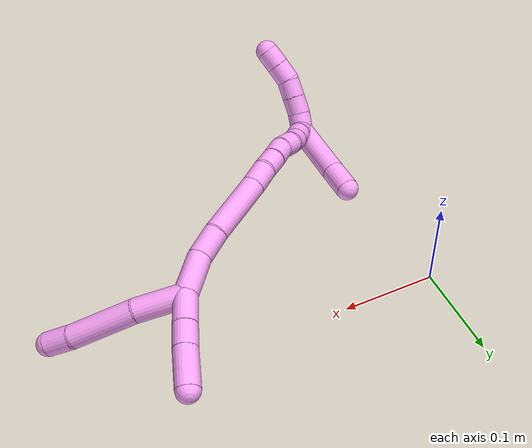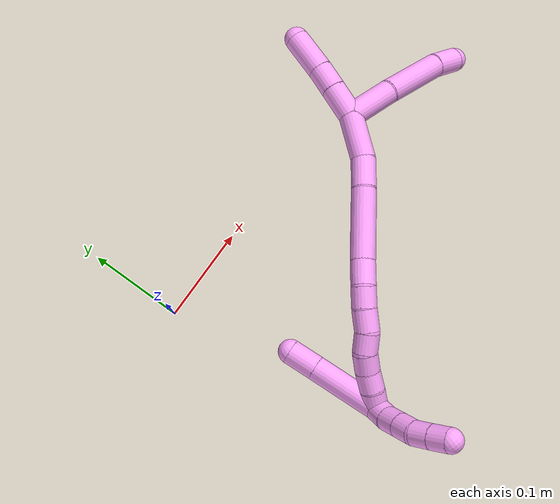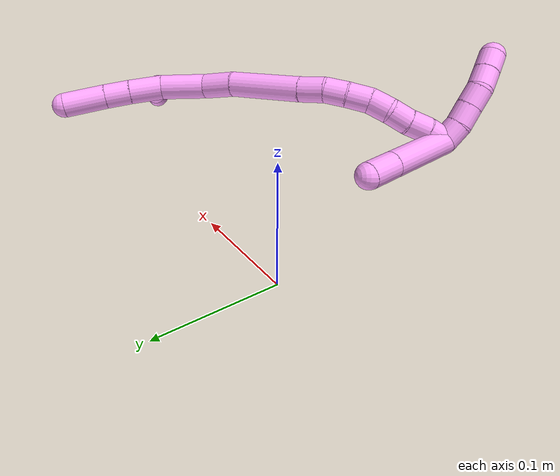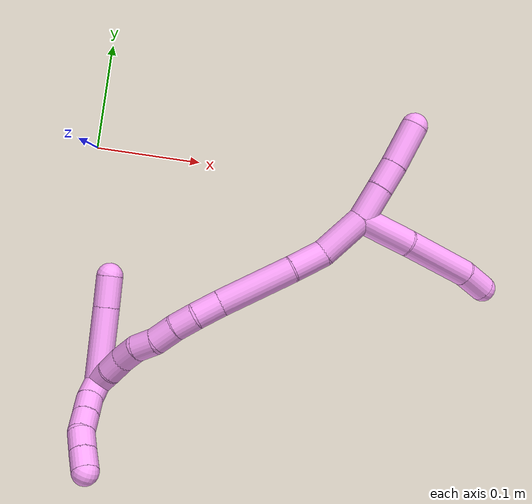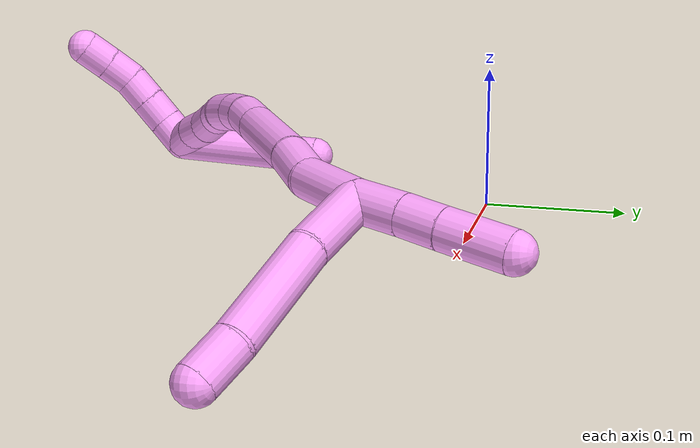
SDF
<sdf version="1.7">
 <world name="default">
  <model name="4">
   <static>0</static>
   <link name="4">
    <collision name="collision-cylinder-e_1_2_8">
     <pose>0.024394 0.007771 -0.00159 -1.7726 1.2564 -1.45455</pose>
     <geometry><cylinder><radius>0.0125</radius><length>0.051302</length></cylinder></geometry>
     <surface>
      <friction><ode><mu>1.16</mu><mu2>1.16</mu2><slip1>0</slip1><slip2>0</slip2></ode></friction>
      <contact><ode><kp>1e+06</kp><kd>1</kd><max_vel>0</max_vel><min_depth>0.001</min_depth></ode></contact>
     </surface>
    </collision>
    <visual name="visual-cylinder-e_1_2_8">
     <pose>0.024394 0.007771 -0.00159 -1.7726 1.2564 -1.45455</pose>
     <geometry><cylinder><radius>0.0125</radius><length>0.051302</length></cylinder></geometry>
     <material><ambient>1 0.65098 0.996078 1</ambient></material>
    </visual>
    <collision name="collision-cylinder-e_2_8_9">
     <pose>0.08029 0.030787 -0.006246 -1.76928 1.11228 -1.29855</pose>
     <geometry><cylinder><radius>0.0125</radius><length>0.070263</length></cylinder></geometry>
     <surface>
      <friction><ode><mu>1.16</mu><mu2>1.16</mu2><slip1>0</slip1><slip2>0</slip2></ode></friction>
      <contact><ode><kp>1e+06</kp><kd>1</kd><max_vel>0</max_vel><min_depth>0.001</min_depth></ode></contact>
     </surface>
    </collision>
    <visual name="visual-cylinder-e_2_8_9">
     <pose>0.08029 0.030787 -0.006246 -1.76928 1.11228 -1.29855</pose>
     <geometry><cylinder><radius>0.0125</radius><length>0.070263</length></cylinder></geometry>
     <material><ambient>1 0.65098 0.996078 1</ambient></material>
    </visual>
    <collision name="collision-cylinder-e_3_9_6">
     <pose>0.123909 0.052584 -0.012834 -2.06391 1.02019 -1.50451</pose>
     <geometry><cylinder><radius>0.0125</radius><length>0.028435</length></cylinder></geometry>
     <surface>
      <friction><ode><mu>1.16</mu><mu2>1.16</mu2><slip1>0</slip1><slip2>0</slip2></ode></friction>
      <contact><ode><kp>1e+06</kp><kd>1</kd><max_vel>0</max_vel><min_depth>0.001</min_depth></ode></contact>
     </surface>
    </collision>
    <visual name="visual-cylinder-e_3_9_6">
     <pose>0.123909 0.052584 -0.012834 -2.06391 1.02019 -1.50451</pose>
     <geometry><cylinder><radius>0.0125</radius><length>0.028435</length></cylinder></geometry>
     <material><ambient>1 0.65098 0.996078 1</ambient></material>
    </visual>
    <collision name="collision-cylinder-e_1_2_10">
     <pose>0.00198 0.003338 0.016075 -0.204748 0.120036 -0.012346</pose>
     <geometry><cylinder><radius>0.0125</radius><length>0.033074</length></cylinder></geometry>
     <surface>
      <friction><ode><mu>1.16</mu><mu2>1.16</mu2><slip1>0</slip1><slip2>0</slip2></ode></friction>
      <contact><ode><kp>1e+06</kp><kd>1</kd><max_vel>0</max_vel><min_depth>0.001</min_depth></ode></contact>
     </surface>
    </collision>
    <visual name="visual-cylinder-e_1_2_10">
     <pose>0.00198 0.003338 0.016075 -0.204748 0.120036 -0.012346</pose>
     <geometry><cylinder><radius>0.0125</radius><length>0.033074</length></cylinder></geometry>
     <material><ambient>1 0.65098 0.996078 1</ambient></material>
    </visual>
    <collision name="collision-cylinder-e_2_10_11">
     <pose>0.005423 0.009645 0.044313 -0.239371 0.116302 -0.014002</pose>
     <geometry><cylinder><radius>0.0125</radius><length>0.025209</length></cylinder></geometry>
     <surface>
      <friction><ode><mu>1.16</mu><mu2>1.16</mu2><slip1>0</slip1><slip2>0</slip2></ode></friction>
      <contact><ode><kp>1e+06</kp><kd>1</kd><max_vel>0</max_vel><min_depth>0.001</min_depth></ode></contact>
     </surface>
    </collision>
    <visual name="visual-cylinder-e_2_10_11">
     <pose>0.005423 0.009645 0.044313 -0.239371 0.116302 -0.014002</pose>
     <geometry><cylinder><radius>0.0125</radius><length>0.025209</length></cylinder></geometry>
     <material><ambient>1 0.65098 0.996078 1</ambient></material>
    </visual>
    <collision name="collision-cylinder-e_3_11_5">
     <pose>0.008218 0.017771 0.076642 -0.250402 0.063888 -0.008044</pose>
     <geometry><cylinder><radius>0.0125</radius><length>0.041717</length></cylinder></geometry>
     <surface>
      <friction><ode><mu>1.16</mu><mu2>1.16</mu2><slip1>0</slip1><slip2>0</slip2></ode></friction>
      <contact><ode><kp>1e+06</kp><kd>1</kd><max_vel>0</max_vel><min_depth>0.001</min_depth></ode></contact>
     </surface>
    </collision>
    <visual name="visual-cylinder-e_3_11_5">
     <pose>0.008218 0.017771 0.076642 -0.250402 0.063888 -0.008044</pose>
     <geometry><cylinder><radius>0.0125</radius><length>0.041717</length></cylinder></geometry>
     <material><ambient>1 0.65098 0.996078 1</ambient></material>
    </visual>
    <collision name="collision-cylinder-e_1_2_12">
     <pose>-0.00943 -0.003854 -0.02092 2.95942 -0.417252 -2.32695</pose>
     <geometry><cylinder><radius>0.0125</radius><length>0.046537</length></cylinder></geometry>
     <surface>
      <friction><ode><mu>1.16</mu><mu2>1.16</mu2><slip1>0</slip1><slip2>0</slip2></ode></friction>
      <contact><ode><kp>1e+06</kp><kd>1</kd><max_vel>0</max_vel><min_depth>0.001</min_depth></ode></contact>
     </surface>
    </collision>
    <visual name="visual-cylinder-e_1_2_12">
     <pose>-0.00943 -0.003854 -0.02092 2.95942 -0.417252 -2.32695</pose>
     <geometry><cylinder><radius>0.0125</radius><length>0.046537</length></cylinder></geometry>
     <material><ambient>1 0.65098 0.996078 1</ambient></material>
    </visual>
    <collision name="collision-cylinder-e_2_12_13">
     <pose>-0.028654 -0.012206 -0.053637 2.77733 -0.659825 -2.15466</pose>
     <geometry><cylinder><radius>0.0125</radius><length>0.031957</length></cylinder></geometry>
     <surface>
      <friction><ode><mu>1.16</mu><mu2>1.16</mu2><slip1>0</slip1><slip2>0</slip2></ode></friction>
      <contact><ode><kp>1e+06</kp><kd>1</kd><max_vel>0</max_vel><min_depth>0.001</min_depth></ode></contact>
     </surface>
    </collision>
    <visual name="visual-cylinder-e_2_12_13">
     <pose>-0.028654 -0.012206 -0.053637 2.77733 -0.659825 -2.15466</pose>
     <geometry><cylinder><radius>0.0125</radius><length>0.031957</length></cylinder></geometry>
     <material><ambient>1 0.65098 0.996078 1</ambient></material>
    </visual>
    <collision name="collision-cylinder-e_3_13_14">
     <pose>-0.061423 -0.021897 -0.09237 2.95111 -0.69719 -2.62752</pose>
     <geometry><cylinder><radius>0.0125</radius><length>0.071564</length></cylinder></geometry>
     <surface>
      <friction><ode><mu>1.16</mu><mu2>1.16</mu2><slip1>0</slip1><slip2>0</slip2></ode></friction>
      <contact><ode><kp>1e+06</kp><kd>1</kd><max_vel>0</max_vel><min_depth>0.001</min_depth></ode></contact>
     </surface>
    </collision>
    <visual name="visual-cylinder-e_3_13_14">
     <pose>-0.061423 -0.021897 -0.09237 2.95111 -0.69719 -2.62752</pose>
     <geometry><cylinder><radius>0.0125</radius><length>0.071564</length></cylinder></geometry>
     <material><ambient>1 0.65098 0.996078 1</ambient></material>
    </visual>
    <collision name="collision-cylinder-e_4_14_15">
     <pose>-0.092085 -0.029452 -0.128927 2.90093 -0.65993 -2.4628</pose>
     <geometry><cylinder><radius>0.0125</radius><length>0.025078</length></cylinder></geometry>
     <surface>
      <friction><ode><mu>1.16</mu><mu2>1.16</mu2><slip1>0</slip1><slip2>0</slip2></ode></friction>
      <contact><ode><kp>1e+06</kp><kd>1</kd><max_vel>0</max_vel><min_depth>0.001</min_depth></ode></contact>
     </surface>
    </collision>
    <visual name="visual-cylinder-e_4_14_15">
     <pose>-0.092085 -0.029452 -0.128927 2.90093 -0.65993 -2.4628</pose>
     <geometry><cylinder><radius>0.0125</radius><length>0.025078</length></cylinder></geometry>
     <material><ambient>1 0.65098 0.996078 1</ambient></material>
    </visual>
    <collision name="collision-cylinder-e_5_15_16">
     <pose>-0.106086 -0.031707 -0.14719 -3.12932 -0.630951 3.10398</pose>
     <geometry><cylinder><radius>0.0125</radius><length>0.021408</length></cylinder></geometry>
     <surface>
      <friction><ode><mu>1.16</mu><mu2>1.16</mu2><slip1>0</slip1><slip2>0</slip2></ode></friction>
      <contact><ode><kp>1e+06</kp><kd>1</kd><max_vel>0</max_vel><min_depth>0.001</min_depth></ode></contact>
     </surface>
    </collision>
    <visual name="visual-cylinder-e_5_15_16">
     <pose>-0.106086 -0.031707 -0.14719 -3.12932 -0.630951 3.10398</pose>
     <geometry><cylinder><radius>0.0125</radius><length>0.021408</length></cylinder></geometry>
     <material><ambient>1 0.65098 0.996078 1</ambient></material>
    </visual>
    <collision name="collision-cylinder-e_6_16_17">
     <pose>-0.118112 -0.030594 -0.165545 -3.03824 -0.52923 2.76439</pose>
     <geometry><cylinder><radius>0.0125</radius><length>0.022626</length></cylinder></geometry>
     <surface>
      <friction><ode><mu>1.16</mu><mu2>1.16</mu2><slip1>0</slip1><slip2>0</slip2></ode></friction>
      <contact><ode><kp>1e+06</kp><kd>1</kd><max_vel>0</max_vel><min_depth>0.001</min_depth></ode></contact>
     </surface>
    </collision>
    <visual name="visual-cylinder-e_6_16_17">
     <pose>-0.118112 -0.030594 -0.165545 -3.03824 -0.52923 2.76439</pose>
     <geometry><cylinder><radius>0.0125</radius><length>0.022626</length></cylinder></geometry>
     <material><ambient>1 0.65098 0.996078 1</ambient></material>
    </visual>
    <collision name="collision-cylinder-e_7_17_18">
     <pose>-0.13059 -0.027001 -0.18253 -2.80005 -0.719876 2.28221</pose>
     <geometry><cylinder><radius>0.0125</radius><length>0.020527</length></cylinder></geometry>
     <surface>
      <friction><ode><mu>1.16</mu><mu2>1.16</mu2><slip1>0</slip1><slip2>0</slip2></ode></friction>
      <contact><ode><kp>1e+06</kp><kd>1</kd><max_vel>0</max_vel><min_depth>0.001</min_depth></ode></contact>
     </surface>
    </collision>
    <visual name="visual-cylinder-e_7_17_18">
     <pose>-0.13059 -0.027001 -0.18253 -2.80005 -0.719876 2.28221</pose>
     <geometry><cylinder><radius>0.0125</radius><length>0.020527</length></cylinder></geometry>
     <material><ambient>1 0.65098 0.996078 1</ambient></material>
    </visual>
    <collision name="collision-cylinder-e_8_18_19">
     <pose>-0.141573 -0.020439 -0.198054 -2.6925 -0.431266 1.52896</pose>
     <geometry><cylinder><radius>0.0125</radius><length>0.020171</length></cylinder></geometry>
     <surface>
      <friction><ode><mu>1.16</mu><mu2>1.16</mu2><slip1>0</slip1><slip2>0</slip2></ode></friction>
      <contact><ode><kp>1e+06</kp><kd>1</kd><max_vel>0</max_vel><min_depth>0.001</min_depth></ode></contact>
     </surface>
    </collision>
    <visual name="visual-cylinder-e_8_18_19">
     <pose>-0.141573 -0.020439 -0.198054 -2.6925 -0.431266 1.52896</pose>
     <geometry><cylinder><radius>0.0125</radius><length>0.020171</length></cylinder></geometry>
     <material><ambient>1 0.65098 0.996078 1</ambient></material>
    </visual>
    <collision name="collision-cylinder-e_9_19_20">
     <pose>-0.149359 -0.013579 -0.215231 -2.82912 -0.363804 1.72521</pose>
     <geometry><cylinder><radius>0.0125</radius><length>0.020067</length></cylinder></geometry>
     <surface>
      <friction><ode><mu>1.16</mu><mu2>1.16</mu2><slip1>0</slip1><slip2>0</slip2></ode></friction>
      <contact><ode><kp>1e+06</kp><kd>1</kd><max_vel>0</max_vel><min_depth>0.001</min_depth></ode></contact>
     </surface>
    </collision>
    <visual name="visual-cylinder-e_9_19_20">
     <pose>-0.149359 -0.013579 -0.215231 -2.82912 -0.363804 1.72521</pose>
     <geometry><cylinder><radius>0.0125</radius><length>0.020067</length></cylinder></geometry>
     <material><ambient>1 0.65098 0.996078 1</ambient></material>
    </visual>
    <collision name="collision-cylinder-e_10_20_1">
     <pose>-0.156543 -0.006427 -0.232482 -2.66794 -0.368468 1.31497</pose>
     <geometry><cylinder><radius>0.0125</radius><length>0.020064</length></cylinder></geometry>
     <surface>
      <friction><ode><mu>1.16</mu><mu2>1.16</mu2><slip1>0</slip1><slip2>0</slip2></ode></friction>
      <contact><ode><kp>1e+06</kp><kd>1</kd><max_vel>0</max_vel><min_depth>0.001</min_depth></ode></contact>
     </surface>
    </collision>
    <visual name="visual-cylinder-e_10_20_1">
     <pose>-0.156543 -0.006427 -0.232482 -2.66794 -0.368468 1.31497</pose>
     <geometry><cylinder><radius>0.0125</radius><length>0.020064</length></cylinder></geometry>
     <material><ambient>1 0.65098 0.996078 1</ambient></material>
    </visual>
    <collision name="collision-cylinder-e_1_1_21">
     <pose>-0.171209 0.003446 -0.207861 -0.16846 -0.319384 0.027195</pose>
     <geometry><cylinder><radius>0.0125</radius><length>0.070405</length></cylinder></geometry>
     <surface>
      <friction><ode><mu>1.16</mu><mu2>1.16</mu2><slip1>0</slip1><slip2>0</slip2></ode></friction>
      <contact><ode><kp>1e+06</kp><kd>1</kd><max_vel>0</max_vel><min_depth>0.001</min_depth></ode></contact>
     </surface>
    </collision>
    <visual name="visual-cylinder-e_1_1_21">
     <pose>-0.171209 0.003446 -0.207861 -0.16846 -0.319384 0.027195</pose>
     <geometry><cylinder><radius>0.0125</radius><length>0.070405</length></cylinder></geometry>
     <material><ambient>1 0.65098 0.996078 1</ambient></material>
    </visual>
    <collision name="collision-cylinder-e_2_21_4">
     <pose>-0.187011 0.011316 -0.161082 -0.16242 -0.326737 0.02683</pose>
     <geometry><cylinder><radius>0.0125</radius><length>0.029595</length></cylinder></geometry>
     <surface>
      <friction><ode><mu>1.16</mu><mu2>1.16</mu2><slip1>0</slip1><slip2>0</slip2></ode></friction>
      <contact><ode><kp>1e+06</kp><kd>1</kd><max_vel>0</max_vel><min_depth>0.001</min_depth></ode></contact>
     </surface>
    </collision>
    <visual name="visual-cylinder-e_2_21_4">
     <pose>-0.187011 0.011316 -0.161082 -0.16242 -0.326737 0.02683</pose>
     <geometry><cylinder><radius>0.0125</radius><length>0.029595</length></cylinder></geometry>
     <material><ambient>1 0.65098 0.996078 1</ambient></material>
    </visual>
    <collision name="collision-cylinder-e_1_1_22">
     <pose>-0.159563 -0.009929 -0.247077 2.24943 0.059349 0.123979</pose>
     <geometry><cylinder><radius>0.0125</radius><length>0.02</length></cylinder></geometry>
     <surface>
      <friction><ode><mu>1.16</mu><mu2>1.16</mu2><slip1>0</slip1><slip2>0</slip2></ode></friction>
      <contact><ode><kp>1e+06</kp><kd>1</kd><max_vel>0</max_vel><min_depth>0.001</min_depth></ode></contact>
     </surface>
    </collision>
    <visual name="visual-cylinder-e_1_1_22">
     <pose>-0.159563 -0.009929 -0.247077 2.24943 0.059349 0.123979</pose>
     <geometry><cylinder><radius>0.0125</radius><length>0.02</length></cylinder></geometry>
     <material><ambient>1 0.65098 0.996078 1</ambient></material>
    </visual>
    <collision name="collision-cylinder-e_2_22_23">
     <pose>-0.15668 -0.025963 -0.258488 2.12769 0.231069 0.412</pose>
     <geometry><cylinder><radius>0.0125</radius><length>0.02</length></cylinder></geometry>
     <surface>
      <friction><ode><mu>1.16</mu><mu2>1.16</mu2><slip1>0</slip1><slip2>0</slip2></ode></friction>
      <contact><ode><kp>1e+06</kp><kd>1</kd><max_vel>0</max_vel><min_depth>0.001</min_depth></ode></contact>
     </surface>
    </collision>
    <visual name="visual-cylinder-e_2_22_23">
     <pose>-0.15668 -0.025963 -0.258488 2.12769 0.231069 0.412</pose>
     <geometry><cylinder><radius>0.0125</radius><length>0.02</length></cylinder></geometry>
     <material><ambient>1 0.65098 0.996078 1</ambient></material>
    </visual>
    <collision name="collision-cylinder-e_3_23_24">
     <pose>-0.152139 -0.04241 -0.268921 2.14444 0.226951 0.41268</pose>
     <geometry><cylinder><radius>0.0125</radius><length>0.02</length></cylinder></geometry>
     <surface>
      <friction><ode><mu>1.16</mu><mu2>1.16</mu2><slip1>0</slip1><slip2>0</slip2></ode></friction>
      <contact><ode><kp>1e+06</kp><kd>1</kd><max_vel>0</max_vel><min_depth>0.001</min_depth></ode></contact>
     </surface>
    </collision>
    <visual name="visual-cylinder-e_3_23_24">
     <pose>-0.152139 -0.04241 -0.268921 2.14444 0.226951 0.41268</pose>
     <geometry><cylinder><radius>0.0125</radius><length>0.02</length></cylinder></geometry>
     <material><ambient>1 0.65098 0.996078 1</ambient></material>
    </visual>
    <collision name="collision-cylinder-e_4_24_25">
     <pose>-0.144952 -0.057445 -0.279564 2.23425 0.516413 0.992812</pose>
     <geometry><cylinder><radius>0.0125</radius><length>0.02</length></cylinder></geometry>
     <surface>
      <friction><ode><mu>1.16</mu><mu2>1.16</mu2><slip1>0</slip1><slip2>0</slip2></ode></friction>
      <contact><ode><kp>1e+06</kp><kd>1</kd><max_vel>0</max_vel><min_depth>0.001</min_depth></ode></contact>
     </surface>
    </collision>
    <visual name="visual-cylinder-e_4_24_25">
     <pose>-0.144952 -0.057445 -0.279564 2.23425 0.516413 0.992812</pose>
     <geometry><cylinder><radius>0.0125</radius><length>0.02</length></cylinder></geometry>
     <material><ambient>1 0.65098 0.996078 1</ambient></material>
    </visual>
    <collision name="collision-cylinder-e_5_25_3">
     <pose>-0.13486 -0.071002 -0.290255 2.24299 0.54148 1.04458</pose>
     <geometry><cylinder><radius>0.0125</radius><length>0.02</length></cylinder></geometry>
     <surface>
      <friction><ode><mu>1.16</mu><mu2>1.16</mu2><slip1>0</slip1><slip2>0</slip2></ode></friction>
      <contact><ode><kp>1e+06</kp><kd>1</kd><max_vel>0</max_vel><min_depth>0.001</min_depth></ode></contact>
     </surface>
    </collision>
    <visual name="visual-cylinder-e_5_25_3">
     <pose>-0.13486 -0.071002 -0.290255 2.24299 0.54148 1.04458</pose>
     <geometry><cylinder><radius>0.0125</radius><length>0.02</length></cylinder></geometry>
     <material><ambient>1 0.65098 0.996078 1</ambient></material>
    </visual>
    <collision name="collision-sphere-3">
     <pose>-0.129706 -0.077707 -0.295592 0 -0 0</pose>
     <geometry><sphere><radius>0.0125</radius></sphere></geometry>
     <surface>
      <friction><ode><mu>1.16</mu><mu2>1.16</mu2><slip1>0</slip1><slip2>0</slip2></ode></friction>
      <contact><ode><kp>1e+06</kp><kd>1</kd><max_vel>0</max_vel><min_depth>0.001</min_depth></ode></contact>
     </surface>
    </collision>
    <visual name="visual-sphere-3">
     <pose>-0.129706 -0.077707 -0.295592 0 -0 0</pose>
     <geometry><sphere><radius>0.0125</radius></sphere></geometry>
     <material><ambient>1 0.65098 0.996078 1</ambient></material>
    </visual>
    <collision name="collision-sphere-25">
     <pose>-0.140014 -0.064297 -0.284919 0 -0 0</pose>
     <geometry><sphere><radius>0.0125</radius></sphere></geometry>
     <surface>
      <friction><ode><mu>1.16</mu><mu2>1.16</mu2><slip1>0</slip1><slip2>0</slip2></ode></friction>
      <contact><ode><kp>1e+06</kp><kd>1</kd><max_vel>0</max_vel><min_depth>0.001</min_depth></ode></contact>
     </surface>
    </collision>
    <visual name="visual-sphere-25">
     <pose>-0.140014 -0.064297 -0.284919 0 -0 0</pose>
     <geometry><sphere><radius>0.0125</radius></sphere></geometry>
     <material><ambient>1 0.65098 0.996078 1</ambient></material>
    </visual>
    <collision name="collision-sphere-24">
     <pose>-0.149889 -0.050594 -0.274209 0 -0 0</pose>
     <geometry><sphere><radius>0.0125</radius></sphere></geometry>
     <surface>
      <friction><ode><mu>1.16</mu><mu2>1.16</mu2><slip1>0</slip1><slip2>0</slip2></ode></friction>
      <contact><ode><kp>1e+06</kp><kd>1</kd><max_vel>0</max_vel><min_depth>0.001</min_depth></ode></contact>
     </surface>
    </collision>
    <visual name="visual-sphere-24">
     <pose>-0.149889 -0.050594 -0.274209 0 -0 0</pose>
     <geometry><sphere><radius>0.0125</radius></sphere></geometry>
     <material><ambient>1 0.65098 0.996078 1</ambient></material>
    </visual>
    <collision name="collision-sphere-23">
     <pose>-0.154389 -0.034226 -0.263633 0 -0 0</pose>
     <geometry><sphere><radius>0.0125</radius></sphere></geometry>
     <surface>
      <friction><ode><mu>1.16</mu><mu2>1.16</mu2><slip1>0</slip1><slip2>0</slip2></ode></friction>
      <contact><ode><kp>1e+06</kp><kd>1</kd><max_vel>0</max_vel><min_depth>0.001</min_depth></ode></contact>
     </surface>
    </collision>
    <visual name="visual-sphere-23">
     <pose>-0.154389 -0.034226 -0.263633 0 -0 0</pose>
     <geometry><sphere><radius>0.0125</radius></sphere></geometry>
     <material><ambient>1 0.65098 0.996078 1</ambient></material>
    </visual>
    <collision name="collision-sphere-22">
     <pose>-0.15897 -0.017699 -0.253343 0 -0 0</pose>
     <geometry><sphere><radius>0.0125</radius></sphere></geometry>
     <surface>
      <friction><ode><mu>1.16</mu><mu2>1.16</mu2><slip1>0</slip1><slip2>0</slip2></ode></friction>
      <contact><ode><kp>1e+06</kp><kd>1</kd><max_vel>0</max_vel><min_depth>0.001</min_depth></ode></contact>
     </surface>
    </collision>
    <visual name="visual-sphere-22">
     <pose>-0.15897 -0.017699 -0.253343 0 -0 0</pose>
     <geometry><sphere><radius>0.0125</radius></sphere></geometry>
     <material><ambient>1 0.65098 0.996078 1</ambient></material>
    </visual>
    <collision name="collision-sphere-4">
     <pose>-0.191761 0.013582 -0.147252 0 -0 0</pose>
     <geometry><sphere><radius>0.0125</radius></sphere></geometry>
     <surface>
      <friction><ode><mu>1.16</mu><mu2>1.16</mu2><slip1>0</slip1><slip2>0</slip2></ode></friction>
      <contact><ode><kp>1e+06</kp><kd>1</kd><max_vel>0</max_vel><min_depth>0.001</min_depth></ode></contact>
     </surface>
    </collision>
    <visual name="visual-sphere-4">
     <pose>-0.191761 0.013582 -0.147252 0 -0 0</pose>
     <geometry><sphere><radius>0.0125</radius></sphere></geometry>
     <material><ambient>1 0.65098 0.996078 1</ambient></material>
    </visual>
    <collision name="collision-sphere-21">
     <pose>-0.182262 0.009049 -0.174912 0 -0 0</pose>
     <geometry><sphere><radius>0.0125</radius></sphere></geometry>
     <surface>
      <friction><ode><mu>1.16</mu><mu2>1.16</mu2><slip1>0</slip1><slip2>0</slip2></ode></friction>
      <contact><ode><kp>1e+06</kp><kd>1</kd><max_vel>0</max_vel><min_depth>0.001</min_depth></ode></contact>
     </surface>
    </collision>
    <visual name="visual-sphere-21">
     <pose>-0.182262 0.009049 -0.174912 0 -0 0</pose>
     <geometry><sphere><radius>0.0125</radius></sphere></geometry>
     <material><ambient>1 0.65098 0.996078 1</ambient></material>
    </visual>
    <collision name="collision-sphere-1">
     <pose>-0.160156 -0.002158 -0.240811 0 -0 0</pose>
     <geometry><sphere><radius>0.0125</radius></sphere></geometry>
     <surface>
      <friction><ode><mu>1.16</mu><mu2>1.16</mu2><slip1>0</slip1><slip2>0</slip2></ode></friction>
      <contact><ode><kp>1e+06</kp><kd>1</kd><max_vel>0</max_vel><min_depth>0.001</min_depth></ode></contact>
     </surface>
    </collision>
    <visual name="visual-sphere-1">
     <pose>-0.160156 -0.002158 -0.240811 0 -0 0</pose>
     <geometry><sphere><radius>0.0125</radius></sphere></geometry>
     <material><ambient>1 0.65098 0.996078 1</ambient></material>
    </visual>
    <collision name="collision-sphere-11">
     <pose>0.006886 0.012613 0.056475 0 -0 0</pose>
     <geometry><sphere><radius>0.0125</radius></sphere></geometry>
     <surface>
      <friction><ode><mu>1.16</mu><mu2>1.16</mu2><slip1>0</slip1><slip2>0</slip2></ode></friction>
      <contact><ode><kp>1e+06</kp><kd>1</kd><max_vel>0</max_vel><min_depth>0.001</min_depth></ode></contact>
     </surface>
    </collision>
    <visual name="visual-sphere-11">
     <pose>0.006886 0.012613 0.056475 0 -0 0</pose>
     <geometry><sphere><radius>0.0125</radius></sphere></geometry>
     <material><ambient>1 0.65098 0.996078 1</ambient></material>
    </visual>
    <collision name="collision-sphere-10">
     <pose>0.003961 0.006676 0.032151 0 -0 0</pose>
     <geometry><sphere><radius>0.0125</radius></sphere></geometry>
     <surface>
      <friction><ode><mu>1.16</mu><mu2>1.16</mu2><slip1>0</slip1><slip2>0</slip2></ode></friction>
      <contact><ode><kp>1e+06</kp><kd>1</kd><max_vel>0</max_vel><min_depth>0.001</min_depth></ode></contact>
     </surface>
    </collision>
    <visual name="visual-sphere-10">
     <pose>0.003961 0.006676 0.032151 0 -0 0</pose>
     <geometry><sphere><radius>0.0125</radius></sphere></geometry>
     <material><ambient>1 0.65098 0.996078 1</ambient></material>
    </visual>
    <collision name="collision-sphere-6">
     <pose>0.136026 0.059136 -0.016355 0 -0 0</pose>
     <geometry><sphere><radius>0.0125</radius></sphere></geometry>
     <surface>
      <friction><ode><mu>1.16</mu><mu2>1.16</mu2><slip1>0</slip1><slip2>0</slip2></ode></friction>
      <contact><ode><kp>1e+06</kp><kd>1</kd><max_vel>0</max_vel><min_depth>0.001</min_depth></ode></contact>
     </surface>
    </collision>
    <visual name="visual-sphere-6">
     <pose>0.136026 0.059136 -0.016355 0 -0 0</pose>
     <geometry><sphere><radius>0.0125</radius></sphere></geometry>
     <material><ambient>1 0.65098 0.996078 1</ambient></material>
    </visual>
    <collision name="collision-sphere-9">
     <pose>0.111793 0.046032 -0.009312 0 -0 0</pose>
     <geometry><sphere><radius>0.0125</radius></sphere></geometry>
     <surface>
      <friction><ode><mu>1.16</mu><mu2>1.16</mu2><slip1>0</slip1><slip2>0</slip2></ode></friction>
      <contact><ode><kp>1e+06</kp><kd>1</kd><max_vel>0</max_vel><min_depth>0.001</min_depth></ode></contact>
     </surface>
    </collision>
    <visual name="visual-sphere-9">
     <pose>0.111793 0.046032 -0.009312 0 -0 0</pose>
     <geometry><sphere><radius>0.0125</radius></sphere></geometry>
     <material><ambient>1 0.65098 0.996078 1</ambient></material>
    </visual>
    <collision name="collision-sphere-2">
     <geometry><sphere><radius>0.0125</radius></sphere></geometry>
     <surface>
      <friction><ode><mu>1.16</mu><mu2>1.16</mu2><slip1>0</slip1><slip2>0</slip2></ode></friction>
      <contact><ode><kp>1e+06</kp><kd>1</kd><max_vel>0</max_vel><min_depth>0.001</min_depth></ode></contact>
     </surface>
    </collision>
    <visual name="visual-sphere-2">
     <geometry><sphere><radius>0.0125</radius></sphere></geometry>
     <material><ambient>1 0.65098 0.996078 1</ambient></material>
    </visual>
    <collision name="collision-sphere-19">
     <pose>-0.145789 -0.016461 -0.206308 0 -0 0</pose>
     <geometry><sphere><radius>0.0125</radius></sphere></geometry>
     <surface>
      <friction><ode><mu>1.16</mu><mu2>1.16</mu2><slip1>0</slip1><slip2>0</slip2></ode></friction>
      <contact><ode><kp>1e+06</kp><kd>1</kd><max_vel>0</max_vel><min_depth>0.001</min_depth></ode></contact>
     </surface>
    </collision>
    <visual name="visual-sphere-19">
     <pose>-0.145789 -0.016461 -0.206308 0 -0 0</pose>
     <geometry><sphere><radius>0.0125</radius></sphere></geometry>
     <material><ambient>1 0.65098 0.996078 1</ambient></material>
    </visual>
    <collision name="collision-sphere-8">
     <pose>0.048787 0.015542 -0.00318 0 -0 0</pose>
     <geometry><sphere><radius>0.0125</radius></sphere></geometry>
     <surface>
      <friction><ode><mu>1.16</mu><mu2>1.16</mu2><slip1>0</slip1><slip2>0</slip2></ode></friction>
      <contact><ode><kp>1e+06</kp><kd>1</kd><max_vel>0</max_vel><min_depth>0.001</min_depth></ode></contact>
     </surface>
    </collision>
    <visual name="visual-sphere-8">
     <pose>0.048787 0.015542 -0.00318 0 -0 0</pose>
     <geometry><sphere><radius>0.0125</radius></sphere></geometry>
     <material><ambient>1 0.65098 0.996078 1</ambient></material>
    </visual>
    <collision name="collision-sphere-5">
     <pose>0.009549 0.022929 0.096808 0 -0 0</pose>
     <geometry><sphere><radius>0.0125</radius></sphere></geometry>
     <surface>
      <friction><ode><mu>1.16</mu><mu2>1.16</mu2><slip1>0</slip1><slip2>0</slip2></ode></friction>
      <contact><ode><kp>1e+06</kp><kd>1</kd><max_vel>0</max_vel><min_depth>0.001</min_depth></ode></contact>
     </surface>
    </collision>
    <visual name="visual-sphere-5">
     <pose>0.009549 0.022929 0.096808 0 -0 0</pose>
     <geometry><sphere><radius>0.0125</radius></sphere></geometry>
     <material><ambient>1 0.65098 0.996078 1</ambient></material>
    </visual>
    <collision name="collision-sphere-12">
     <pose>-0.018859 -0.007708 -0.041841 0 -0 0</pose>
     <geometry><sphere><radius>0.0125</radius></sphere></geometry>
     <surface>
      <friction><ode><mu>1.16</mu><mu2>1.16</mu2><slip1>0</slip1><slip2>0</slip2></ode></friction>
      <contact><ode><kp>1e+06</kp><kd>1</kd><max_vel>0</max_vel><min_depth>0.001</min_depth></ode></contact>
     </surface>
    </collision>
    <visual name="visual-sphere-12">
     <pose>-0.018859 -0.007708 -0.041841 0 -0 0</pose>
     <geometry><sphere><radius>0.0125</radius></sphere></geometry>
     <material><ambient>1 0.65098 0.996078 1</ambient></material>
    </visual>
    <collision name="collision-sphere-13">
     <pose>-0.038448 -0.016703 -0.065433 0 -0 0</pose>
     <geometry><sphere><radius>0.0125</radius></sphere></geometry>
     <surface>
      <friction><ode><mu>1.16</mu><mu2>1.16</mu2><slip1>0</slip1><slip2>0</slip2></ode></friction>
      <contact><ode><kp>1e+06</kp><kd>1</kd><max_vel>0</max_vel><min_depth>0.001</min_depth></ode></contact>
     </surface>
    </collision>
    <visual name="visual-sphere-13">
     <pose>-0.038448 -0.016703 -0.065433 0 -0 0</pose>
     <geometry><sphere><radius>0.0125</radius></sphere></geometry>
     <material><ambient>1 0.65098 0.996078 1</ambient></material>
    </visual>
    <collision name="collision-sphere-14">
     <pose>-0.084397 -0.027091 -0.119306 0 -0 0</pose>
     <geometry><sphere><radius>0.0125</radius></sphere></geometry>
     <surface>
      <friction><ode><mu>1.16</mu><mu2>1.16</mu2><slip1>0</slip1><slip2>0</slip2></ode></friction>
      <contact><ode><kp>1e+06</kp><kd>1</kd><max_vel>0</max_vel><min_depth>0.001</min_depth></ode></contact>
     </surface>
    </collision>
    <visual name="visual-sphere-14">
     <pose>-0.084397 -0.027091 -0.119306 0 -0 0</pose>
     <geometry><sphere><radius>0.0125</radius></sphere></geometry>
     <material><ambient>1 0.65098 0.996078 1</ambient></material>
    </visual>
    <collision name="collision-sphere-15">
     <pose>-0.099772 -0.031813 -0.138547 0 -0 0</pose>
     <geometry><sphere><radius>0.0125</radius></sphere></geometry>
     <surface>
      <friction><ode><mu>1.16</mu><mu2>1.16</mu2><slip1>0</slip1><slip2>0</slip2></ode></friction>
      <contact><ode><kp>1e+06</kp><kd>1</kd><max_vel>0</max_vel><min_depth>0.001</min_depth></ode></contact>
     </surface>
    </collision>
    <visual name="visual-sphere-15">
     <pose>-0.099772 -0.031813 -0.138547 0 -0 0</pose>
     <geometry><sphere><radius>0.0125</radius></sphere></geometry>
     <material><ambient>1 0.65098 0.996078 1</ambient></material>
    </visual>
    <collision name="collision-sphere-16">
     <pose>-0.1124 -0.031601 -0.155832 0 -0 0</pose>
     <geometry><sphere><radius>0.0125</radius></sphere></geometry>
     <surface>
      <friction><ode><mu>1.16</mu><mu2>1.16</mu2><slip1>0</slip1><slip2>0</slip2></ode></friction>
      <contact><ode><kp>1e+06</kp><kd>1</kd><max_vel>0</max_vel><min_depth>0.001</min_depth></ode></contact>
     </surface>
    </collision>
    <visual name="visual-sphere-16">
     <pose>-0.1124 -0.031601 -0.155832 0 -0 0</pose>
     <geometry><sphere><radius>0.0125</radius></sphere></geometry>
     <material><ambient>1 0.65098 0.996078 1</ambient></material>
    </visual>
    <collision name="collision-sphere-17">
     <pose>-0.123824 -0.029586 -0.175259 0 -0 0</pose>
     <geometry><sphere><radius>0.0125</radius></sphere></geometry>
     <surface>
      <friction><ode><mu>1.16</mu><mu2>1.16</mu2><slip1>0</slip1><slip2>0</slip2></ode></friction>
      <contact><ode><kp>1e+06</kp><kd>1</kd><max_vel>0</max_vel><min_depth>0.001</min_depth></ode></contact>
     </surface>
    </collision>
    <visual name="visual-sphere-17">
     <pose>-0.123824 -0.029586 -0.175259 0 -0 0</pose>
     <geometry><sphere><radius>0.0125</radius></sphere></geometry>
     <material><ambient>1 0.65098 0.996078 1</ambient></material>
    </visual>
    <collision name="collision-sphere-18">
     <pose>-0.137357 -0.024417 -0.189801 0 -0 0</pose>
     <geometry><sphere><radius>0.0125</radius></sphere></geometry>
     <surface>
      <friction><ode><mu>1.16</mu><mu2>1.16</mu2><slip1>0</slip1><slip2>0</slip2></ode></friction>
      <contact><ode><kp>1e+06</kp><kd>1</kd><max_vel>0</max_vel><min_depth>0.001</min_depth></ode></contact>
     </surface>
    </collision>
    <visual name="visual-sphere-18">
     <pose>-0.137357 -0.024417 -0.189801 0 -0 0</pose>
     <geometry><sphere><radius>0.0125</radius></sphere></geometry>
     <material><ambient>1 0.65098 0.996078 1</ambient></material>
    </visual>
    <collision name="collision-sphere-20">
     <pose>-0.152929 -0.010696 -0.224153 0 -0 0</pose>
     <geometry><sphere><radius>0.0125</radius></sphere></geometry>
     <surface>
      <friction><ode><mu>1.16</mu><mu2>1.16</mu2><slip1>0</slip1><slip2>0</slip2></ode></friction>
      <contact><ode><kp>1e+06</kp><kd>1</kd><max_vel>0</max_vel><min_depth>0.001</min_depth></ode></contact>
     </surface>
    </collision>
    <visual name="visual-sphere-20">
     <pose>-0.152929 -0.010696 -0.224153 0 -0 0</pose>
     <geometry><sphere><radius>0.0125</radius></sphere></geometry>
     <material><ambient>1 0.65098 0.996078 1</ambient></material>
    </visual>
    <inertial>
     <pose>-0.061691 -0.005359 -0.104641 0 -0 0</pose>
     <mass>0.75</mass>
     <inertia>
      <ixx>-1.2e-05</ixx>
      <ixy>0</ixy>
      <ixz>0</ixz>
      <iyy>0.000103</iyy>
      <iyz>0</iyz>
      <izz>-2.8e-05</izz>
     </inertia>
    </inertial>
   </link>
   <pose>0.259728 -0.033359 0.070705 -1.457 -0.010274 -0.27814</pose>
  </model>
 </world>
</sdf>
